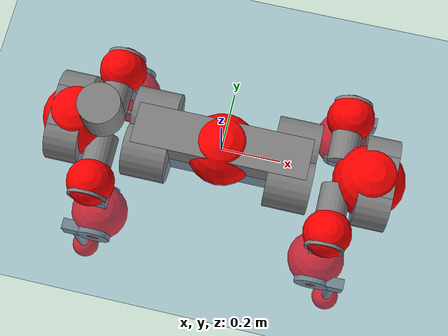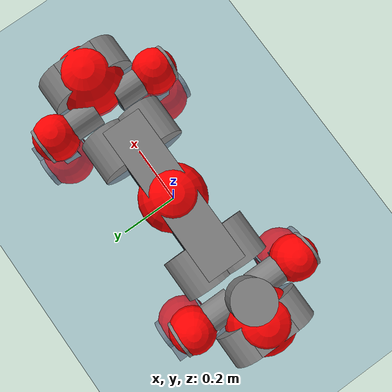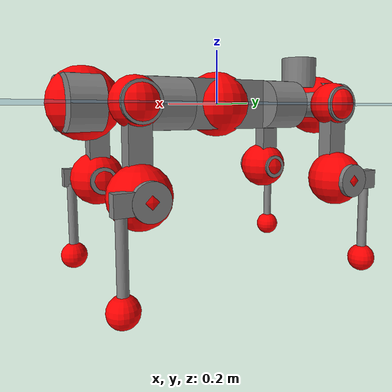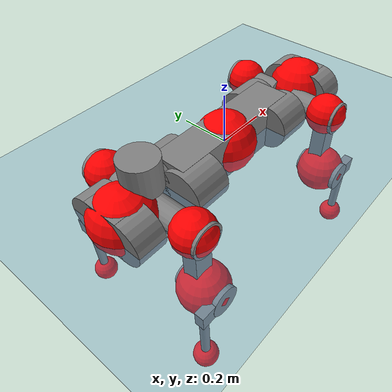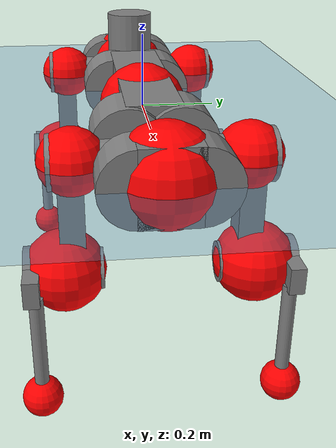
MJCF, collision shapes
<mujoco model="anymal_c">
  <compiler angle="radian" assetdir="assets" balanceinertia="true" inertiafromgeom="false"/>

  <option timestep="0.005" density="1.2" viscosity="2e-05"/>

  <size nkey="1"/>

  <visual>
    <quality shadowsize="8192"/>
    <map shadowclip="0.5"/>
  </visual>

  <default>
    <default class="/">
      <material specular="0" shininess="0.25"/>
      <geom contype="0" conaffinity="0" group="1" solref="-1000 -80"/>
      <site size="0.01 0.005 0.005" group="5"/>
      <general forcelimited="true" forcerange="-80 80" biastype="affine" gainprm="80" biasprm="0 -80 -2"/>
      <default class="anymal_c">
        <joint armature="0.01" damping="0.01" frictionloss="0.1"/>
        <default class="visual">
          <geom type="mesh" group="2"/>
          <default class="visual_zflip"/>
        </default>
        <default class="collision">
          <geom type="cylinder" group="3"/>
          <default class="foot">
            <geom size="0.03 0 0" type="sphere" condim="6" priority="1" friction="0.8 0.02 0.01" solimp="0.015 1 0.03"/>
          </default>
        </default>
      </default>
      <default class="reward_collision_sphere">
        <geom group="5" rgba="1 0 0 1"/>
      </default>
    </default>
  </default>

  <asset>
    <texture type="skybox" colorspace="auto" name="//unnamed_texture_0" builtin="gradient" rgb1="0.95 0.95 0.95" rgb2="0.95 0.95 0.95" width="100" height="600"/>
    <texture type="2d" colorspace="auto" name="texplane" builtin="checker" rgb1="0.345 0.575 0.748" rgb2="0.345 0.575 0.748" markrgb="1 1 1" width="512" height="512"/>
    <texture type="2d" colorspace="linear" name="base" file="base.png"/>
    <texture type="2d" colorspace="linear" name="top_shell" file="top_shell.png"/>
    <texture type="2d" colorspace="linear" name="bottom_shell" file="bottom_shell.png"/>
    <texture type="2d" colorspace="linear" name="remote" file="remote.png"/>
    <texture type="2d" colorspace="linear" name="hatch" file="hatch.png"/>
    <texture type="2d" colorspace="linear" name="handle" file="handle.png"/>
    <texture type="2d" colorspace="linear" name="face" file="face.png"/>
    <texture type="2d" colorspace="linear" name="battery" file="battery.png"/>
    <texture type="2d" colorspace="linear" name="lidar_cage" file="lidar_cage.png"/>
    <texture type="2d" colorspace="linear" name="depth_camera" file="depth_camera.png"/>
    <texture type="2d" colorspace="linear" name="wide_angle_camera" file="wide_angle_camera.png"/>
    <texture type="2d" colorspace="linear" name="lidar" file="lidar.png"/>
    <texture type="2d" colorspace="linear" name="drive" file="drive.png"/>
    <texture type="2d" colorspace="linear" name="hip_l" file="hip_l.png"/>
    <texture type="2d" colorspace="linear" name="shank_l" file="shank_l.png"/>
    <texture type="2d" colorspace="linear" name="foot" file="foot.png"/>
    <texture type="2d" colorspace="linear" name="thigh" file="thigh.png"/>
    <texture type="2d" colorspace="linear" name="shank_r" file="shank_r.png"/>
    <texture type="2d" colorspace="linear" name="hip_r" file="hip_r.png"/>
    <material name="MatPlane" class="/" texture="texplane" texuniform="true" texrepeat="2 2" specular="0.9" shininess="0.5"/>
    <material name="black_plastic" class="/" rgba="0.007 0.007 0.007 1"/>
    <material name="green" class="/" rgba="0.052 0.178 0.033 1"/>
    <material name="red" class="/" rgba="0.178 0.006 0.005 1"/>
    <material name="yellow" class="/" rgba="0.178 0.119 0.006 1"/>
    <material name="lwl" class="/" rgba="0.8 0.8 0.8 1"/>
    <material name="base" class="/" texture="base"/>
    <material name="top_shell" class="/" texture="top_shell"/>
    <material name="bottom_shell" class="/" texture="bottom_shell"/>
    <material name="hip_l" class="/" texture="hip_l"/>
    <material name="thigh" class="/" texture="thigh"/>
    <material name="shank_l" class="/" texture="shank_l"/>
    <material name="foot" class="/" texture="foot"/>
    <material name="hip_r" class="/" texture="hip_r"/>
    <material name="shank" class="/" texture="shank_r"/>
    <material name="hatch" class="/" texture="hatch"/>
    <material name="remote" class="/" texture="remote"/>
    <material name="handle" class="/" texture="handle"/>
    <material name="face" class="/" texture="face"/>
    <material name="depth_camera" class="/" texture="depth_camera"/>
    <material name="wide_angle_camera" class="/" texture="wide_angle_camera"/>
    <material name="battery" class="/" texture="battery"/>
    <material name="lidar_cage" class="/" texture="lidar_cage"/>
    <material name="lidar" class="/" texture="lidar"/>
    <material name="drive" class="/" texture="drive"/>
    <mesh name="base_0" class="/" file="base_0.obj"/>
    <mesh name="base_1" class="/" file="base_1.obj"/>
    <mesh name="base_2" class="/" file="base_2.obj"/>
    <mesh name="base_3" class="/" file="base_3.obj"/>
    <mesh name="base_4" class="/" file="base_4.obj"/>
    <mesh name="base_5" class="/" file="base_5.obj"/>
    <mesh name="top_shell" class="/" file="top_shell.obj"/>
    <mesh name="bottom_shell" class="/" file="bottom_shell.obj"/>
    <mesh name="remote" class="/" file="remote.obj"/>
    <mesh name="handle" class="/" file="handle.obj"/>
    <mesh name="face" class="/" file="face.obj"/>
    <mesh name="wide_angle_camera" class="/" file="wide_angle_camera.obj"/>
    <mesh name="depth_camera" class="/" file="depth_camera.obj"/>
    <mesh name="battery" class="/" file="battery.obj"/>
    <mesh name="lidar_cage" class="/" file="lidar_cage.obj"/>
    <mesh name="lidar" class="/" file="lidar.obj"/>
    <mesh name="drive" class="/" file="drive.obj"/>
    <mesh name="hip_l" class="/" file="hip_l.obj"/>
    <mesh name="thigh" class="/" file="thigh.obj"/>
    <mesh name="shank_l" class="/" file="shank_l.obj"/>
    <mesh name="foot" class="/" file="foot.obj"/>
    <mesh name="hip_r" class="/" file="hip_r.obj"/>
    <mesh name="hatch" class="/" file="hatch.obj"/>
    <mesh name="shank_r" class="/" file="shank_r.obj"/>
  </asset>

  <worldbody>
    <geom name="floor" class="/" size="100 100 0.125" type="plane" group="0" material="MatPlane"/>
    <light name="toplight_shadow" class="/" pos="0 0 5" dir="0.0990148 0.0990148 -0.990148" type="directional" ambient="0.04 0.04 0.04" diffuse="0.55 0.55 0.55" specular="0.12 0.12 0.12"/>
    <light name="toplight_fill" class="/" pos="0 0 5" dir="0.0990148 0.0990148 -0.990148" type="directional" castshadow="false" ambient="0.04 0.04 0.04" diffuse="0.3 0.3 0.3" specular="0.08 0.08 0.08"/>
    <body name="trunk" childclass="anymal_c" pos="0.002631 -0.000364176 -0.000352644" quat="0.999999 0.00122658 -0.000295502 -0.000427744">
      <inertial pos="-9.26452e-05 -8.79163e-05 0.0495696" quat="0.501002 0.503189 0.497015 0.498773" mass="19.0478" diaginertia="1.06064 0.461925 0.199362"/>
      <joint name="//unnamed_joint_0" type="free" armature="0" damping="0" frictionloss="0"/>
      <geom name="//unnamed_geom_1" class="visual" material="green" mesh="base_0"/>
      <geom name="//unnamed_geom_2" class="visual" material="yellow" mesh="base_1"/>
      <geom name="//unnamed_geom_3" class="visual" material="red" mesh="base_2"/>
      <geom name="//unnamed_geom_4" class="visual" material="black_plastic" mesh="base_3"/>
      <geom name="//unnamed_geom_5" class="visual" material="lwl" mesh="base_4"/>
      <geom name="//unnamed_geom_6" class="visual" material="base" mesh="base_5"/>
      <geom name="trunk_1" class="collision" size="0.293864 0.0709326 0.091199" type="box"/>
      <geom name="trunk_2" class="collision" size="0.091199 0.0734659" pos="0.241214 0.0660753 0" quat="0.707107 0 0.707107 0"/>
      <geom name="trunk_3" class="collision" size="0.091199 0.0734659" pos="-0.241214 0.0660753 0" quat="0.707107 0 0.707107 0"/>
      <geom name="trunk_4" class="collision" size="0.091199 0.0734659" pos="0.241214 -0.0660753 0" quat="0.707107 0 0.707107 0"/>
      <geom name="trunk_5" class="collision" size="0.091199 0.0734659" pos="-0.241214 -0.0660753 0" quat="0.707107 0 0.707107 0"/>
      <geom name="//unnamed_geom_12" class="visual" material="top_shell" mesh="top_shell"/>
      <geom name="//unnamed_geom_13" class="visual" material="bottom_shell" mesh="bottom_shell"/>
      <geom name="//unnamed_geom_14" class="visual" material="remote" mesh="remote"/>
      <geom name="//unnamed_geom_15" class="visual" material="handle" mesh="handle"/>
      <geom name="//unnamed_geom_16" class="visual" pos="0.459692 0 0" quat="1 0 0 0" material="face" mesh="face"/>
      <geom name="trunk_6" class="collision" size="0.0557327 0.0709326 0.091199" pos="0.520689 0 0" type="box"/>
      <geom name="//unnamed_geom_18" class="collision" size="0.091199 0.0557327" pos="0.520689 0.0660753 0" quat="0.707107 0 0.707107 0"/>
      <geom name="//unnamed_geom_19" class="collision" size="0.091199 0.0557327" pos="0.520689 -0.0660753 0" quat="0.707107 0 0.707107 0"/>
      <geom name="//unnamed_geom_20" class="visual" pos="0.511978 0 -0.0278932" quat="0.965926 0 0.258819 0" material="depth_camera" mesh="depth_camera"/>
      <geom name="//unnamed_geom_21" class="visual" pos="0.568931 0 0.0147755" material="wide_angle_camera" mesh="wide_angle_camera"/>
      <geom name="//unnamed_geom_22" class="visual_zflip" pos="-0.459692 0 0" quat="0 0 0 1" material="face" mesh="face"/>
      <geom name="trunk_7" class="collision" size="0.0557327 0.0709326 0.091199" pos="-0.520689 0 0" quat="0 0 0 1" type="box"/>
      <geom name="//unnamed_geom_24" class="collision" size="0.091199 0.0557327" pos="-0.520689 -0.0660753 0" quat="0 -0.707107 0 0.707107"/>
      <geom name="//unnamed_geom_25" class="collision" size="0.091199 0.0557327" pos="-0.520689 0.0660753 0" quat="0 -0.707107 0 0.707107"/>
      <geom name="//unnamed_geom_26" class="visual" pos="-0.511978 0 -0.0278932" quat="0 -0.258819 0 0.965926" material="depth_camera" mesh="depth_camera"/>
      <geom name="//unnamed_geom_27" class="visual_zflip" pos="-0.568931 0 0.0147755" quat="0 0 0 1" material="wide_angle_camera" mesh="wide_angle_camera"/>
      <geom name="//unnamed_geom_28" class="visual" material="battery" mesh="battery"/>
      <geom name="//unnamed_geom_29" class="visual" pos="0 0.0700016 0.0295999" quat="0.683013 -0.183013 0.183013 0.683013" material="depth_camera" mesh="depth_camera"/>
      <geom name="//unnamed_geom_30" class="visual" pos="0 -0.0700016 0.0295999" quat="0.683013 0.183013 0.183013 -0.683013" material="depth_camera" mesh="depth_camera"/>
      <geom name="//unnamed_geom_31" class="visual" pos="-0.403686 0 0.072545" quat="1 0 0 0" material="lidar_cage" mesh="lidar_cage"/>
      <geom name="trunk_8" class="collision" size="0.0709326 0.0607994" pos="-0.403686 0 0.131765"/>
      <geom name="//unnamed_geom_33" class="visual" pos="-0.403686 -6.48616e-05 0.140352" quat="0.707107 0 0 -0.707107" material="lidar" mesh="lidar"/>
      <geom name="//unnamed_geom_34" class="visual" pos="0.332598 0.0981843 -7.43035e-10" quat="0.258819 0.965926 0 0" material="drive" mesh="drive"/>
      <geom name="//unnamed_geom_35" class="visual" pos="0.332598 -0.0981843 7.43035e-10" quat="0.258819 -0.965926 0 0" material="drive" mesh="drive"/>
      <geom name="//unnamed_geom_36" class="visual" pos="-0.332598 0.0981843 7.43035e-10" quat="0 0 0.965926 -0.258819" material="drive" mesh="drive"/>
      <geom name="//unnamed_geom_37" class="visual" pos="-0.332598 -0.0981843 -7.43035e-10" quat="0 0 -0.965926 -0.258819" material="drive" mesh="drive"/>
      <geom name="//unnamed_geom_38" class="visual" pos="0.128647 0 0.0720515" quat="1 0 0 0" material="hatch" mesh="hatch"/>
      <geom name="//unnamed_geom_39" class="reward_collision_sphere" size="0.121599"/>
      <geom name="//unnamed_geom_40" class="reward_collision_sphere" size="0.121599" pos="0.499063 0 0"/>
      <geom name="//unnamed_geom_41" class="reward_collision_sphere" size="0.121599" pos="-0.499063 0 0"/>
      <site name="imu" pos="0.274889 0.0123432 0.0588328" size="0.0101332"/>
      <camera name="track" pos="0 -1.88787 0" quat="0.707107 0.707107 0 0" mode="trackcom"/>
      <camera name="ego_camera" pos="0.499063 0 -0.0394803" quat="-0.5 -0.5 0.5 0.5"/>
      <body name="LF_HIP" pos="0.333012 0.0997255 4.39393e-05" quat="0.258826 0.965924 -6.41852e-06 5.20393e-06">
        <inertial pos="0.0617851 -0.0160525 -0.00745435" quat="-0.128183 0.7098 -0.135282 0.679302" mass="2.84249" diaginertia="0.0100143 0.00366875 0.00308026"/>
        <joint name="LF_HAA" pos="0 0 0" axis="0.999883 0.0108485 -0.0108231" range="-0.665886 0.497574" armature="0.010027" damping="0.012842" frictionloss="0.101466"/>
        <geom name="//unnamed_geom_42" class="visual" pos="0 -4.37094e-05 7.17923e-06" quat="0.258819 -0.965926 0 0" material="hip_l" mesh="hip_l"/>
        <geom name="//unnamed_geom_43" class="visual" pos="0.0664308 -0.0783366 -0.0455463" quat="0.183013 -0.683013 0.683013 0.183013" material="drive" mesh="drive"/>
        <geom name="//unnamed_geom_44" class="collision" size="0.0506661 0.0709326" pos="0.0664308 -0.0112892 -0.00681528" quat="-0.353553 -0.612372 0.612372 -0.353553"/>
        <body name="LF_THIGH" pos="0.0674557 -0.0678994 -0.0404636" quat="0.182336 -0.683787 0.682549 0.182525">
          <inertial pos="0.0364342 -0.00139971 -0.245137" quat="0.993159 -0.00507682 -0.080668 0.084274" mass="3.09616" diaginertia="0.0497684 0.0219206 0.0039433"/>
          <joint name="LF_HFE" pos="0 0 0" axis="0.999998 0.000804614 0.00201023" range="-3.14496 3.13653" armature="0.0102446" damping="0.0102567" frictionloss="0.104415"/>
          <geom name="//unnamed_geom_45" class="visual" pos="0.00328475 5.176e-06 0" quat="0.707107 0 0 -0.707107" material="thigh" mesh="thigh"/>
          <geom name="//unnamed_geom_46" class="collision" size="0.065866 0.0405329" pos="0.0443611 0 0" quat="0.5 0.5 -0.5 -0.5"/>
          <geom name="//unnamed_geom_47" class="collision" size="0.0379996 0.0303997 0.143197" pos="0.0332708 0 -0.139478" quat="0.707107 0 0 -0.707107" type="box"/>
          <geom name="//unnamed_geom_48" class="visual" pos="0.111236 0 -0.281297" quat="1 0 0 0" material="drive" mesh="drive"/>
          <geom name="//unnamed_geom_49" class="collision" size="0.0506661 0.0709326" pos="0.0336036 0 -0.281297" quat="0.707107 0 0.707107 0"/>
          <geom name="//unnamed_geom_50" class="reward_collision_sphere" size="0.0810658" pos="0.0277257 0 0"/>
          <body name="LF_SHANK" pos="0.110789 -0.0030578 -0.281072" quat="1 0.000606061 0.000392532 0.000365438">
            <inertial pos="0.00366253 -0.0574697 -0.077932" quat="0.99285 -0.116548 0.000173854 -0.0257904" mass="0.611364" diaginertia="0.0173388 0.00728281 0.00107047"/>
            <joint name="LF_KFE" pos="0 0 0" axis="1 -0.00018523 0.000936041" range="-3.19342 3.14947" armature="0.0104532" damping="0" frictionloss="0.105046"/>
            <geom name="//unnamed_geom_51" class="visual" pos="0.00107109 0.00571108 0" quat="0.707107 0 0 -0.707107" material="shank_l" mesh="shank_l"/>
            <geom name="LF_kfe_act" class="collision" size="0.0607994 0.0202665" pos="0.0221806 0 0" quat="0.5 0.5 -0.5 -0.5"/>
            <geom name="//unnamed_geom_53" class="collision" size="0.058265 0.0341996 0.0192531" pos="0.0221806 -0.0542752 0" quat="0.5 0.5 -0.5 -0.5" type="box"/>
            <geom name="//unnamed_geom_54" class="visual" pos="0.0144726 -0.0811784 -0.333579" quat="0.382683 0 0 -0.92388" material="foot" mesh="foot"/>
            <geom name="LF_calf" class="collision" size="0.0177331 0.143134" pos="0.0144728 -0.0830189 -0.166789" quat="0.707107 0 0 -0.707107"/>
            <geom name="LF_foot" class="foot" size="0.0333495" pos="0.0144728 -0.0830189 -0.311371" quat="0.707107 0 0 -0.707107"/>
            <geom name="//unnamed_geom_57" class="reward_collision_sphere" size="0.101332" pos="-0.0554514 0 0"/>
            <geom name="//unnamed_geom_58" class="reward_collision_sphere" size="0.0506661" pos="0.0144728 -0.0830189 -0.311371"/>
            <site name="LF_foot" class="foot" pos="0.0144728 -0.0830189 -0.311371" quat="0.707107 0 0 -0.707107" size="0.0101332"/>
          </body>
        </body>
      </body>
      <body name="RF_HIP" pos="0.332222 -0.0982641 -0.002503" quat="0.259728 -0.965681 0.000597698 0.000676965">
        <inertial pos="0.0637266 0.0123636 -0.00817373" quat="0.14093 0.678193 0.117326 0.711638" mass="2.8609" diaginertia="0.00944749 0.00363847 0.00298359"/>
        <joint name="RF_HAA" pos="0 0 0" axis="0.999998 -0.00159343 -0.000902536" range="-0.506745 0.723323" armature="0.00971745" damping="0.0123583" frictionloss="0.0887097"/>
        <geom name="//unnamed_geom_59" class="visual" pos="0 4.3709e-05 7.17921e-06" quat="0.258819 0.965926 0 0" material="hip_r" mesh="hip_r"/>
        <geom name="//unnamed_geom_60" class="visual" pos="0.0664308 0.0783366 -0.0455463" quat="0.183013 0.683013 0.683013 -0.183013" material="drive" mesh="drive"/>
        <geom name="//unnamed_geom_61" class="collision" size="0.0506661 0.0709326" pos="0.0664308 0.0112892 -0.00681528" quat="-0.353553 0.612372 0.612372 0.353553"/>
        <body name="RF_THIGH" pos="0.0665067 0.0655468 -0.0409654" quat="0.183049 0.682989 0.683021 -0.183031">
          <inertial pos="0.0352886 -0.00224142 -0.242294" quat="0.992615 -0.00674224 -0.0870208 0.0842462" mass="3.23183" diaginertia="0.0503975 0.0224752 0.00401539"/>
          <joint name="RF_HFE" pos="0 0 0" axis="1 -3.69332e-06 0.00029677" range="-3.13013 3.18693" armature="0.0102222" damping="0.0149531" frictionloss="0.101916"/>
          <geom name="//unnamed_geom_62" class="visual" pos="0.00328475 5.176e-06 0" quat="0.707107 0 0 -0.707107" material="thigh" mesh="thigh"/>
          <geom name="//unnamed_geom_63" class="collision" size="0.065866 0.0405329" pos="0.0443611 0 0" quat="0.5 0.5 0.5 0.5"/>
          <geom name="//unnamed_geom_64" class="collision" size="0.0379996 0.0303997 0.143197" pos="0.0332708 0 -0.139478" quat="0.707107 0 0 0.707107" type="box"/>
          <geom name="//unnamed_geom_65" class="visual" pos="0.111236 0 -0.281297" quat="1 0 0 0" material="drive" mesh="drive"/>
          <geom name="//unnamed_geom_66" class="collision" size="0.0506661 0.0709326" pos="0.0336036 0 -0.281297" quat="0.707107 0 0.707107 0"/>
          <geom name="//unnamed_geom_67" class="reward_collision_sphere" size="0.0810658" pos="0.0277257 0 0"/>
          <body name="RF_SHANK" pos="0.111393 -0.00205765 -0.280937" quat="1 5.7047e-06 -3.88377e-05 2.21662e-08">
            <inertial pos="0.00657342 0.0583123 -0.0794244" quat="0.992361 0.117566 0.00451571 0.0371144" mass="0.606838" diaginertia="0.0169819 0.00691343 0.00102062"/>
            <joint name="RF_KFE" pos="0 0 0" axis="0.999962 -0.00824808 -0.00265803" range="-3.1379 3.17352" armature="0.0104636" damping="0.0200251" frictionloss="0.102342"/>
            <geom name="//unnamed_geom_68" class="visual" pos="0.00107108 -0.00571107 0" quat="0.707107 0 0 0.707107" material="shank" mesh="shank_r"/>
            <geom name="RF_kfe_act" class="collision" size="0.0607994 0.0202665" pos="0.0221806 0 0" quat="0.5 0.5 0.5 0.5"/>
            <geom name="//unnamed_geom_70" class="collision" size="0.058265 0.0341996 0.0192531" pos="0.0221806 0.0542752 0" quat="0.5 0.5 0.5 0.5" type="box"/>
            <geom name="//unnamed_geom_71" class="visual" pos="0.0144731 0.0811784 -0.333579" quat="0.382683 0 0 0.92388" material="foot" mesh="foot"/>
            <geom name="RF_calf" class="collision" size="0.0177331 0.143134" pos="0.0144728 0.0830189 -0.166789" quat="0.707107 0 0 0.707107"/>
            <geom name="RF_foot" class="foot" size="0.0277005" pos="0.0144728 0.0830189 -0.311371" quat="0.707107 0 0 0.707107"/>
            <geom name="//unnamed_geom_74" class="reward_collision_sphere" size="0.101332" pos="-0.0554514 0 0"/>
            <geom name="//unnamed_geom_75" class="reward_collision_sphere" size="0.0506661" pos="0.0144728 0.0830189 -0.311371"/>
            <site name="RF_foot" class="foot" pos="0.0144728 0.0830189 -0.311371" quat="0.707107 0 0 0.707107" size="0.0101332"/>
          </body>
        </body>
      </body>
      <body name="LH_HIP" pos="-0.3318 0.0986797 -0.000759857" quat="-7.7022e-05 -1.96135e-05 0.965956 -0.258708">
        <inertial pos="0.0626326 0.0168618 -0.0103454" quat="0.125022 0.683251 0.133929 0.706824" mass="2.9507" diaginertia="0.00971481 0.0036203 0.00314218"/>
        <joint name="LH_HAA" pos="0 0 0" axis="0.999999 0.000168763 -0.00102276" range="-0.480499 0.700565" armature="0.008992" damping="0.0148964" frictionloss="0.114599"/>
        <geom name="//unnamed_geom_76" class="visual" pos="0 4.3709e-05 7.17921e-06" quat="-0.258819 -0.965926 0 0" material="hip_r" mesh="hip_r"/>
        <geom name="//unnamed_geom_77" class="visual" pos="0.0664308 0.0783366 -0.0455463" quat="0.183013 0.683013 0.683013 -0.183013" material="drive" mesh="drive"/>
        <geom name="//unnamed_geom_78" class="collision" size="0.0506661 0.0709326" pos="0.0664308 0.0112892 -0.00681528" quat="-0.353553 0.612372 0.612372 0.353553"/>
        <body name="LH_THIGH" pos="0.0657471 0.0656271 -0.0398467" quat="0.18298 0.683189 0.682878 -0.182891">
          <inertial pos="0.0341571 -0.000285488 -0.243138" quat="0.992997 -0.00464993 -0.0808444 0.0860211" mass="3.25986" diaginertia="0.0504555 0.0218884 0.00394735"/>
          <joint name="LH_HFE" pos="0 0 0" axis="0.999988 -0.00485812 -0.00020112" stiffness="0.00448662" range="-3.13121 3.14656" armature="0.0111679" damping="0.00348488" frictionloss="0.101065"/>
          <geom name="//unnamed_geom_79" class="visual" pos="0.00328475 5.176e-06 0" quat="0.707107 0 0 -0.707107" material="thigh" mesh="thigh"/>
          <geom name="//unnamed_geom_80" class="collision" size="0.065866 0.0405329" pos="0.0443611 0 0" quat="0.5 0.5 -0.5 -0.5"/>
          <geom name="//unnamed_geom_81" class="collision" size="0.0379996 0.0303997 0.143197" pos="0.0332708 0 -0.139478" quat="0.707107 0 0 -0.707107" type="box"/>
          <geom name="//unnamed_geom_82" class="visual" pos="0.111236 0 -0.281297" quat="1 0 0 0" material="drive" mesh="drive"/>
          <geom name="//unnamed_geom_83" class="collision" size="0.0506661 0.0709326" pos="0.0336036 0 -0.281297" quat="0.707107 0 0.707107 0"/>
          <geom name="//unnamed_geom_84" class="reward_collision_sphere" size="0.0810658" pos="0.0277257 0 0"/>
          <body name="LH_SHANK" pos="0.111608 -0.000888058 -0.283581" quat="1 -3.01926e-05 0.000488414 1.4356e-05">
            <inertial pos="0.00667189 0.060355 -0.0791986" quat="0.993363 0.112373 8.77665e-06 0.0245224" mass="0.607601" diaginertia="0.016714 0.00690605 0.00100487"/>
            <joint name="LH_KFE" pos="0 0 0" axis="0.999966 0.0018836 0.00804331" range="-3.14718 3.1431" armature="0.0106173" damping="0.000344776" frictionloss="0.114893"/>
            <geom name="//unnamed_geom_85" class="visual" pos="0.00107108 -0.00571107 0" quat="-0.707107 0 0 -0.707107" material="shank" mesh="shank_r"/>
            <geom name="LH_kfe_act" class="collision" size="0.0607994 0.0202665" pos="0.0221806 0 0" quat="0.5 0.5 -0.5 -0.5"/>
            <geom name="//unnamed_geom_87" class="collision" size="0.058265 0.0341996 0.0192531" pos="0.0221806 0.0542752 0" quat="0.5 0.5 -0.5 -0.5" type="box"/>
            <geom name="//unnamed_geom_88" class="visual" pos="0.0144731 0.0811784 -0.333579" quat="-0.382683 0 0 -0.92388" material="foot" mesh="foot"/>
            <geom name="LH_calf" class="collision" size="0.0177331 0.143134" pos="0.0144728 0.0830189 -0.166789" quat="0.707107 0 0 -0.707107"/>
            <geom name="LH_foot" class="foot" size="0.0315715" pos="0.0144728 0.0830189 -0.311371" quat="0.707107 0 0 -0.707107"/>
            <geom name="//unnamed_geom_91" class="reward_collision_sphere" size="0.101332" pos="-0.0554514 0 0"/>
            <geom name="//unnamed_geom_92" class="reward_collision_sphere" size="0.0506661" pos="0.0144728 0.0830189 -0.311371"/>
            <site name="LH_foot" class="foot" pos="0.0144728 0.0830189 -0.311371" quat="0.707107 0 0 -0.707107" size="0.0101332"/>
          </body>
        </body>
      </body>
      <body name="RH_HIP" pos="-0.333284 -0.0994692 -0.00120813" quat="0.00112814 0.000278755 -0.966095 -0.258184">
        <inertial pos="0.0655171 -0.0125121 -0.0110952" quat="-0.12119 0.709748 -0.129523 0.681758" mass="2.88829" diaginertia="0.0098033 0.00366186 0.00307719"/>
        <joint name="RH_HAA" pos="0 0 0" axis="0.999898 -0.00161378 -0.014199" range="-0.735659 0.476511" armature="0.00990686" damping="0.0131602" frictionloss="0.0965308"/>
        <geom name="//unnamed_geom_93" class="visual" pos="0 -4.37094e-05 7.17923e-06" quat="-0.258819 0.965926 0 0" material="hip_l" mesh="hip_l"/>
        <geom name="//unnamed_geom_94" class="visual" pos="0.0664308 -0.0783366 -0.0455463" quat="-0.183013 0.683013 -0.683013 -0.183013" material="drive" mesh="drive"/>
        <geom name="//unnamed_geom_95" class="collision" size="0.0506661 0.0709326" pos="0.0664308 -0.0112892 -0.00681528" quat="0.353553 0.612372 -0.612372 0.353553"/>
        <body name="RH_THIGH" pos="0.0673467 -0.0703262 -0.0442654" quat="-0.183024 0.683001 -0.683033 -0.182968">
          <inertial pos="0.0346332 -0.000332582 -0.242292" quat="0.993199 -0.00552172 -0.080659 0.0837843" mass="3.09872" diaginertia="0.051336 0.0228784 0.00391484"/>
          <joint name="RH_HFE" pos="0 0 0" axis="0.999996 -0.000654393 -0.0026269" range="-3.13841 3.19592" armature="0.0101537" damping="0.00847769" frictionloss="0.0964611"/>
          <geom name="//unnamed_geom_96" class="visual" pos="0.00328475 5.176e-06 0" quat="0.707107 0 0 -0.707107" material="thigh" mesh="thigh"/>
          <geom name="//unnamed_geom_97" class="collision" size="0.065866 0.0405329" pos="0.0443611 0 0" quat="0.5 0.5 0.5 0.5"/>
          <geom name="//unnamed_geom_98" class="collision" size="0.0379996 0.0303997 0.143197" pos="0.0332708 0 -0.139478" quat="0.707107 0 0 0.707107" type="box"/>
          <geom name="//unnamed_geom_99" class="visual" pos="0.111236 0 -0.281297" quat="1 0 0 0" material="drive" mesh="drive"/>
          <geom name="//unnamed_geom_100" class="collision" size="0.0506661 0.0709326" pos="0.0336036 0 -0.281297" quat="0.707107 0 0.707107 0"/>
          <geom name="//unnamed_geom_101" class="reward_collision_sphere" size="0.0810658" pos="0.0277257 0 0"/>
          <body name="RH_SHANK" pos="0.111895 0.000169559 -0.279958" quat="1 -8.8625e-05 -0.000182697 -0.000101254">
            <inertial pos="0.00418241 -0.0582978 -0.0800591" quat="0.99247 -0.119767 0.000903028 -0.0256735" mass="0.609502" diaginertia="0.016966 0.00695627 0.0010795"/>
            <joint name="RH_KFE" pos="0 0 0" axis="0.999886 0.0144501 0.00444608" range="-3.11094 3.13917" armature="0.0106606" damping="0.0207492" frictionloss="0.106447"/>
            <geom name="//unnamed_geom_102" class="visual" pos="0.00107109 0.00571108 0" quat="0.707107 0 0 -0.707107" material="shank_l" mesh="shank_l"/>
            <geom name="RH_kfe_act" class="collision" size="0.0607994 0.0202665" pos="0.0221806 0 0" quat="0.5 0.5 0.5 0.5"/>
            <geom name="//unnamed_geom_104" class="collision" size="0.058265 0.0341996 0.0192531" pos="0.0221806 -0.0542752 0" quat="0.5 0.5 0.5 0.5" type="box"/>
            <geom name="//unnamed_geom_105" class="visual" pos="0.0144726 -0.0811784 -0.333579" quat="0.382683 0 0 -0.92388" material="foot" mesh="foot"/>
            <geom name="RH_calf" class="collision" size="0.0177331 0.143134" pos="0.0144728 -0.0830189 -0.166789" quat="0.707107 0 0 0.707107"/>
            <geom name="RH_foot" class="foot" size="0.0273822" pos="0.0144728 -0.0830189 -0.311371" quat="0.707107 0 0 0.707107"/>
            <geom name="//unnamed_geom_108" class="reward_collision_sphere" size="0.101332" pos="-0.0554514 0 0"/>
            <geom name="//unnamed_geom_109" class="reward_collision_sphere" size="0.0506661" pos="0.0144728 -0.0830189 -0.311371"/>
            <site name="RH_foot" class="foot" pos="0.0144728 -0.0830189 -0.311371" quat="0.707107 0 0 0.707107" size="0.0101332"/>
          </body>
        </body>
      </body>
    </body>
  </worldbody>

  <contact>
    <pair class="/" geom1="floor" geom2="LF_foot" name="//unnamed_contact_0"/>
    <pair class="/" geom1="floor" geom2="RF_foot" name="//unnamed_contact_1"/>
    <pair class="/" geom1="floor" geom2="LH_foot" name="//unnamed_contact_2"/>
    <pair class="/" geom1="floor" geom2="RH_foot" name="//unnamed_contact_3"/>
  </contact>

  <actuator>
    <general name="LF_HAA" class="/" joint="LF_HAA" forcerange="-81.9293 81.9293" gainprm="81.4742" biasprm="0 -81.4742 -1.97171"/>
    <general name="LF_HFE" class="/" joint="LF_HFE" forcerange="-78.8242 78.8242" gainprm="81.4742" biasprm="0 -81.4742 -1.97171"/>
    <general name="LF_KFE" class="/" joint="LF_KFE" forcerange="-81.0593 81.0593" gainprm="81.4742" biasprm="0 -81.4742 -1.97171"/>
    <general name="RF_HAA" class="/" joint="RF_HAA" forcerange="-81.0523 81.0523" gainprm="81.4742" biasprm="0 -81.4742 -1.97171"/>
    <general name="RF_HFE" class="/" joint="RF_HFE" forcerange="-86.1147 86.1147" gainprm="81.4742" biasprm="0 -81.4742 -1.97171"/>
    <general name="RF_KFE" class="/" joint="RF_KFE" forcerange="-81.6839 81.6839" gainprm="81.4742" biasprm="0 -81.4742 -1.97171"/>
    <general name="LH_HAA" class="/" joint="LH_HAA" forcerange="-89.6759 89.6759" gainprm="81.4742" biasprm="0 -81.4742 -1.97171"/>
    <general name="LH_HFE" class="/" joint="LH_HFE" forcerange="-80.739 80.739" gainprm="81.4742" biasprm="0 -81.4742 -1.97171"/>
    <general name="LH_KFE" class="/" joint="LH_KFE" forcerange="-73.8083 73.8083" gainprm="81.4742" biasprm="0 -81.4742 -1.97171"/>
    <general name="RH_HAA" class="/" joint="RH_HAA" forcerange="-77.1321 77.1321" gainprm="81.4742" biasprm="0 -81.4742 -1.97171"/>
    <general name="RH_HFE" class="/" joint="RH_HFE" forcerange="-89.6743 89.6743" gainprm="81.4742" biasprm="0 -81.4742 -1.97171"/>
    <general name="RH_KFE" class="/" joint="RH_KFE" forcerange="-79.5804 79.5804" gainprm="81.4742" biasprm="0 -81.4742 -1.97171"/>
  </actuator>

  <sensor>
    <gyro site="imu" name="imu_angular_velocity"/>
    <velocimeter site="imu" name="imu_linear_velocity"/>
    <framelinvel objtype="site" objname="LF_foot" name="LF_foot_global_linear_velocity"/>
    <framelinvel objtype="site" objname="RF_foot" name="RF_foot_global_linear_velocity"/>
    <framelinvel objtype="site" objname="LH_foot" name="LH_foot_global_linear_velocity"/>
    <framelinvel objtype="site" objname="RH_foot" name="RH_foot_global_linear_velocity"/>
  </sensor>

  <keyframe>
    <key name="home" qpos="0 0 0.55 1 0 0 0 0 0.4 -0.8 0 -0.4 0.8 0 -0.4 0.8 0 0.4 -0.8"/>
  </keyframe>
</mujoco>
